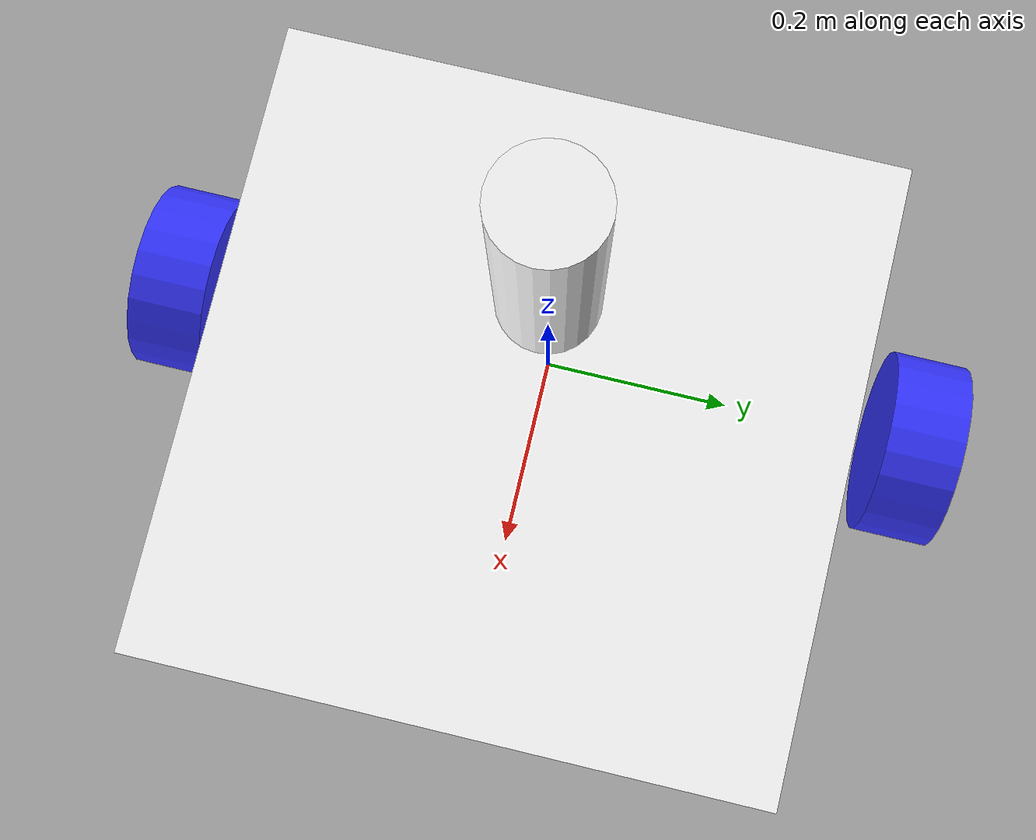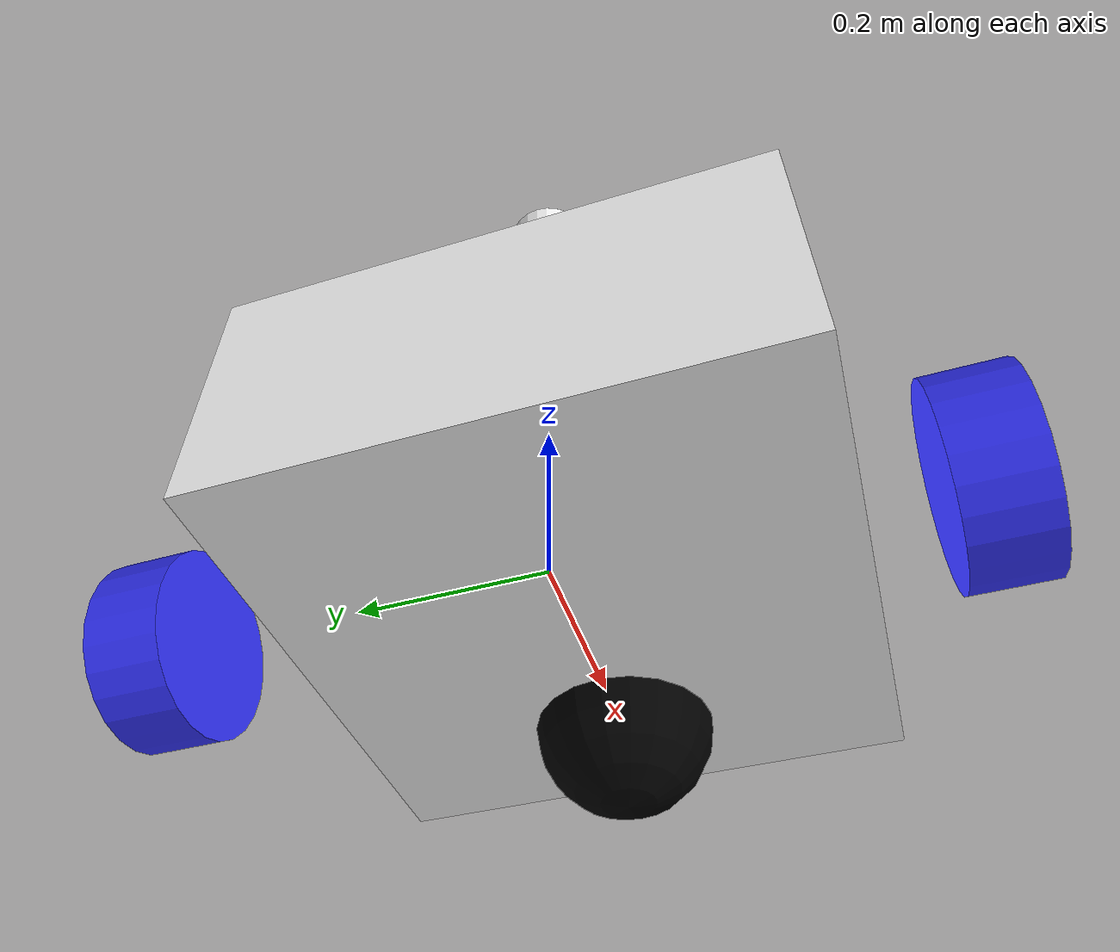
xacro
<?xml version="1.0"?>
<robot xmlns:xacro="http://www.ros.org/wiki/xacro">

    <xacro:include filename="inertial_macros.xacro"/>

    <material name="white">
        <color rgba="1 1 1 1"/>
    </material>

    <material name="orange">
        <color rgba="1 0.3 0.1 1"/>
    </material>

    <material name="blue">
        <color rgba="0.2 0.2 1 1"/>
    </material>

    <material name="black">
        <color rgba="0 0 0 1"/>
    </material>

    <material name="red">
        <color rgba="1 0 0 1"/>
    </material>

    <!-- BASE LINK -->
    <link name="base_link">

    </link>

    <joint name="base_footprint_joint" type="fixed">
        <parent link="base_link"/>
        <child link="base_footprint"/>
        <origin xyz="0 0 0" rpy="0 0 0"/>
    </joint>

    <link name="base_footprint">
    </link>

    <!-- CHASSIS LINK -->

    <joint name="chassis_joint" type="fixed">
        <parent link="base_link" />
        <child link="chassis" />
        <origin xyz="-0.2 0 0" />
    </joint>

    <link name="chassis">
        <visual>
            <origin xyz="0.3 0 0.15"/>
            <geometry>
                <box size="0.6 0.6 0.3"/>
            </geometry>
            <material name="white"/>
        </visual>
        <collision>
            <origin xyz="0.3 0 0.15"/>
            <geometry>
                <box size="0.6 0.6 0.3"/>
            </geometry>
        </collision>
        <xacro:inertial_box mass="10" x="0.6" y="0.6" z="0.3">
            <origin xyz="0.3 0 0.15" rpy="0 0 0"/>
        </xacro:inertial_box>
    </link>

    <gazebo reference="chassis">
        <material>Gazebo/White</material>
    </gazebo>

    <!-- LEFT WHEEL LINK -->

    <joint name="left_wheel_joint" type="continuous">
        <parent link="base_link"/>
        <child link="left_wheel"/>
        <origin xyz="0 0.405 0" rpy="-${pi/2} 0 0"/>
        <axis xyz="0 0 1"/>
    </joint>

    <link name="left_wheel">
        <visual>
            <geometry>
                <cylinder radius="0.1" length="0.08"/>
            </geometry>
            <material name="blue"/>
        </visual>
        <collision>
            <geometry>
                <sphere radius="0.1" />
            </geometry>
        </collision>
        <xacro:inertial_cylinder mass="0.4" length="0.08" radius="0.1">
            <origin xyz="0 0 0" rpy="0 0 0"/>
        </xacro:inertial_cylinder>
    </link>

    <gazebo reference="left_wheel">
        <material>Gazebo/Blue</material>
    </gazebo>

    <!-- RIGHT WHEEL LINK -->

    <joint name="right_wheel_joint" type="continuous">
        <parent link="base_link"/>
        <child link="right_wheel"/>
        <origin xyz="0 -0.405 0" rpy="${pi/2} 0 0"/>
        <axis xyz="0 0 -1"/>
    </joint>

    <link name="right_wheel">
        <visual>
            <geometry>
                <cylinder radius="0.1" length="0.08"/>
            </geometry>
            <material name="blue"/>
        </visual>
        <collision>
            <geometry>
                <sphere radius="0.1" />
            </geometry>
        </collision>
        <xacro:inertial_cylinder mass="0.4" length="0.08" radius="0.1">
            <origin xyz="0 0 0" rpy="0 0 0"/>
        </xacro:inertial_cylinder>
    </link>

    <gazebo reference="right_wheel">
        <material>Gazebo/Blue</material>
    </gazebo>

    <!-- CASTER WHEEL LINK-->
    <joint name="caster_wheel_joint" type="fixed">
        <parent link="chassis"/>
        <child link="caster_wheel"/>
        <origin xyz="0.48 0 0"/>
    </joint>

    <link name="caster_wheel">
        <visual>
            <geometry>
                <sphere radius="0.1"/>
            </geometry>
            <material name="black"/>
        </visual>
        <collision>
            <geometry>
                <sphere radius="0.1"/>
            </geometry>
        </collision>
        <xacro:inertial_sphere mass="0.2" radius="0.1">
            <origin xyz="0 0 0" rpy="0 0 0"/>
        </xacro:inertial_sphere>
    </link>

    <gazebo reference="caster_wheel">
        <material>Gazebo/Black</material>
        <mu1 value="0.001"/>
        <mu2 value="0.001"/>
    </gazebo>

    <!--CAMERA MOUNT-->
    <joint name="camera_mount_joint" type="fixed">
        <parent link="base_link"/>
        <child link="camera_mount"/>
        <origin xyz="0 0 0.45"/>
    </joint>

    <link name="camera_mount">
        <visual>
            <geometry>
                <cylinder radius="0.05" length="0.3"/>
            </geometry>
            <material name="white"/>
        </visual>
        <collision>
            <geometry>
                <cylinder radius="0.05" length="0.3"/>
            </geometry>
        </collision>
        <xacro:inertial_cylinder mass="0.4" length="0.3" radius="0.05">
            <origin xyz="0 0 0" rpy="0 0 0"/>
        </xacro:inertial_cylinder>
    </link>

</robot>
